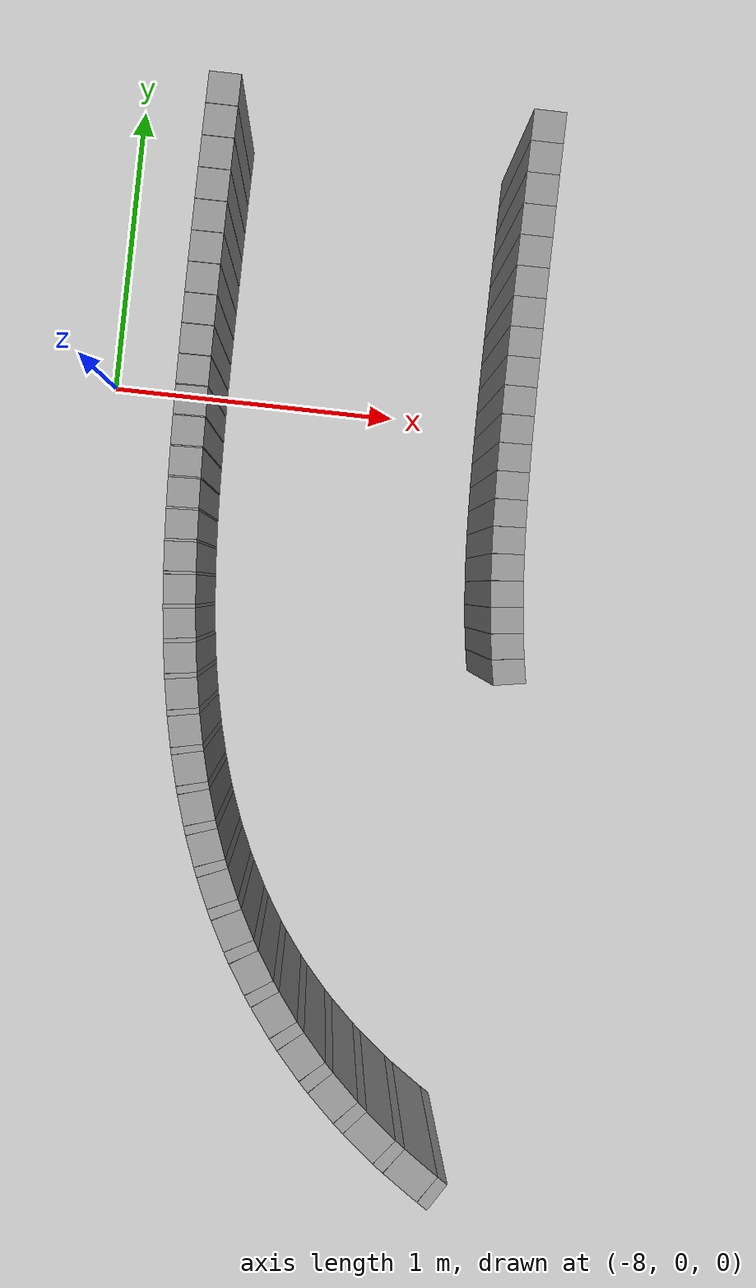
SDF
<sdf version="1.6">
 <world name="default">
  <include><uri>model://ground_plane</uri></include>
  <include><uri>model://sun</uri></include>
  <model name="wall_66_outward">
   <static>true</static>
   <link name="link">
    <collision name="collision">
     <geometry><box><size>0.09631572807930842 0.1 1.0</size></box></geometry>
    </collision>
    <visual name="visual">
     <geometry><box><size>0.09631572807930842 0.1 1.0</size></box></geometry>
     <material>
      <script><uri>file://media/materials/scripts/gazebo.material</uri><name>Gazebo/Gray</name></script>
     </material>
    </visual>
   </link>
   <pose>-6.646806929179499 0.8423376542330165 0.5 0 0 -1.5793397009311867</pose>
  </model>
  <model name="wall_67_outward">
   <static>true</static>
   <link name="link">
    <collision name="collision">
     <geometry><box><size>0.09636997948394029 0.1 1.0</size></box></geometry>
    </collision>
    <visual name="visual">
     <geometry><box><size>0.09636997948394029 0.1 1.0</size></box></geometry>
     <material>
      <script><uri>file://media/materials/scripts/gazebo.material</uri><name>Gazebo/Gray</name></script>
     </material>
    </visual>
   </link>
   <pose>-6.6475295909052825 0.7459975631209121 0.5 0 0 -1.5772555633033383</pose>
  </model>
  <model name="wall_68_outward">
   <static>true</static>
   <link name="link">
    <collision name="collision">
     <geometry><box><size>0.09609616892084166 0.1 1.0</size></box></geometry>
    </collision>
    <visual name="visual">
     <geometry><box><size>0.09609616892084166 0.1 1.0</size></box></geometry>
     <material>
      <script><uri>file://media/materials/scripts/gazebo.material</uri><name>Gazebo/Gray</name></script>
     </material>
    </visual>
   </link>
   <pose>-6.648060812452079 0.6497659976939563 0.5 0 0 -1.5753747868347545</pose>
  </model>
  <model name="wall_69_outward">
   <static>true</static>
   <link name="link">
    <collision name="collision">
     <geometry><box><size>0.09551934050685137 0.1 1.0</size></box></geometry>
    </collision>
    <visual name="visual">
     <geometry><box><size>0.09551934050685137 0.1 1.0</size></box></geometry>
     <material>
      <script><uri>file://media/materials/scripts/gazebo.material</uri><name>Gazebo/Gray</name></script>
     </material>
    </visual>
   </link>
   <pose>-6.64841480212271 0.5539589345733616 0.5 0 0 -1.5736021330247256</pose>
  </model>
  <model name="wall_70_outward">
   <static>true</static>
   <link name="link">
    <collision name="collision">
     <geometry><box><size>0.09467899923356797 0.1 1.0</size></box></geometry>
    </collision>
    <visual name="visual">
     <geometry><box><size>0.09467899923356797 0.1 1.0</size></box></geometry>
     <material>
      <script><uri>file://media/materials/scripts/gazebo.material</uri><name>Gazebo/Gray</name></script>
     </material>
    </visual>
   </link>
   <pose>-6.648597572060714 0.45885997781566623 0.5 0 0 -1.5718264547539569</pose>
  </model>
  <model name="wall_71_outward">
   <static>true</static>
   <link name="link">
    <collision name="collision">
     <geometry><box><size>0.09362774729241372 0.1 1.0</size></box></geometry>
    </collision>
    <visual name="visual">
     <geometry><box><size>0.09362774729241372 0.1 1.0</size></box></geometry>
     <material>
      <script><uri>file://media/materials/scripts/gazebo.material</uri><name>Gazebo/Gray</name></script>
     </material>
    </visual>
   </link>
   <pose>-6.648605551240209 0.36470664743778175 0.5 0 0 -1.569925077398375</pose>
  </model>
  <model name="wall_72_outward">
   <static>true</static>
   <link name="link">
    <collision name="collision">
     <geometry><box><size>0.09242669823755846 0.1 1.0</size></box></geometry>
    </collision>
    <visual name="visual">
     <geometry><box><size>0.09242669823755846 0.1 1.0</size></box></geometry>
     <material>
      <script><uri>file://media/materials/scripts/gazebo.material</uri><name>Gazebo/Gray</name></script>
     </material>
    </visual>
   </link>
   <pose>-6.648423612673602 0.2716796580051666 0.5 0 0 -1.5677419662093321</pose>
  </model>
  <model name="wall_73_outward">
   <static>true</static>
   <link name="link">
    <collision name="collision">
     <geometry><box><size>0.09113584901181712 0.1 1.0</size></box></geometry>
    </collision>
    <visual name="visual">
     <geometry><box><size>0.09113584901181712 0.1 1.0</size></box></geometry>
     <material>
      <script><uri>file://media/materials/scripts/gazebo.material</uri><name>Gazebo/Gray</name></script>
     </material>
    </visual>
   </link>
   <pose>-6.648023358422238 0.17989933658742335 0.5 0 0 -1.5651102298796487</pose>
  </model>
  <model name="wall_74_outward">
   <static>true</static>
   <link name="link">
    <collision name="collision">
     <geometry><box><size>0.08981278426145214 0.1 1.0</size></box></geometry>
    </collision>
    <visual name="visual">
     <geometry><box><size>0.08981278426145214 0.1 1.0</size></box></geometry>
     <material>
      <script><uri>file://media/materials/scripts/gazebo.material</uri><name>Gazebo/Gray</name></script>
     </material>
    </visual>
   </link>
   <pose>-6.647361095609651 0.08942756637681172 0.5 0 0 -1.5618184069321794</pose>
  </model>
  <model name="wall_75_outward">
   <static>true</static>
   <link name="link">
    <collision name="collision">
     <geometry><box><size>0.08850952684762141 0.1 1.0</size></box></geometry>
    </collision>
    <visual name="visual">
     <geometry><box><size>0.08850952684762141 0.1 1.0</size></box></geometry>
     <material>
      <script><uri>file://media/materials/scripts/gazebo.material</uri><name>Gazebo/Gray</name></script>
     </material>
    </visual>
   </link>
   <pose>-6.646375726987853 0.0002720504862332683 0.5 0 0 -1.557640119449319</pose>
  </model>
  <model name="wall_76_outward">
   <static>true</static>
   <link name="link">
    <collision name="collision">
     <geometry><box><size>0.08726296151428786 0.1 1.0</size></box></geometry>
    </collision>
    <visual name="visual">
     <geometry><box><size>0.08726296151428786 0.1 1.0</size></box></geometry>
     <material>
      <script><uri>file://media/materials/scripts/gazebo.material</uri><name>Gazebo/Gray</name></script>
     </material>
    </visual>
   </link>
   <pose>-6.644986794409071 -0.08760290520799549 0.5 0 0 -1.552305767029209</pose>
  </model>
  <model name="wall_77_outward">
   <static>true</static>
   <link name="link">
    <collision name="collision">
     <geometry><box><size>0.08610045240167953 0.1 1.0</size></box></geometry>
    </collision>
    <visual name="visual">
     <geometry><box><size>0.08610045240167953 0.1 1.0</size></box></geometry>
     <material>
      <script><uri>file://media/materials/scripts/gazebo.material</uri><name>Gazebo/Gray</name></script>
     </material>
    </visual>
   </link>
   <pose>-6.6430923979326995 -0.17426341124934486 0.5 0 0 -1.5455284527245339</pose>
  </model>
  <model name="wall_78_outward">
   <static>true</static>
   <link name="link">
    <collision name="collision">
     <geometry><box><size>0.08503401619928413 0.1 1.0</size></box></geometry>
    </collision>
    <visual name="visual">
     <geometry><box><size>0.08503401619928413 0.1 1.0</size></box></geometry>
     <material>
      <script><uri>file://media/materials/scripts/gazebo.material</uri><name>Gazebo/Gray</name></script>
     </material>
    </visual>
   </link>
   <pose>-6.6405685250781765 -0.2597926392818611 0.5 0 0 -1.537010455135015</pose>
  </model>
  <model name="wall_79_outward">
   <static>true</static>
   <link name="link">
    <collision name="collision">
     <geometry><box><size>0.08403524210491692 0.1 1.0</size></box></geometry>
    </collision>
    <visual name="visual">
     <geometry><box><size>0.08403524210491692 0.1 1.0</size></box></geometry>
     <material>
      <script><uri>file://media/materials/scripts/gazebo.material</uri><name>Gazebo/Gray</name></script>
     </material>
    </visual>
   </link>
   <pose>-6.637269340854101 -0.34426168354729436 0.5 0 0 -1.5264436431702448</pose>
  </model>
  <model name="wall_80_outward">
   <static>true</static>
   <link name="link">
    <collision name="collision">
     <geometry><box><size>0.08307576225322622 0.1 1.0</size></box></geometry>
    </collision>
    <visual name="visual">
     <geometry><box><size>0.08307576225322622 0.1 1.0</size></box></geometry>
     <material>
      <script><uri>file://media/materials/scripts/gazebo.material</uri><name>Gazebo/Gray</name></script>
     </material>
    </visual>
   </link>
   <pose>-6.633024968198006 -0.42770754543979006 0.5 0 0 -1.5134343301970588</pose>
  </model>
  <model name="wall_81_outward">
   <static>true</static>
   <link name="link">
    <collision name="collision">
     <geometry><box><size>0.08211374612448818 0.1 1.0</size></box></geometry>
    </collision>
    <visual name="visual">
     <geometry><box><size>0.08211374612448818 0.1 1.0</size></box></geometry>
     <material>
      <script><uri>file://media/materials/scripts/gazebo.material</uri><name>Gazebo/Gray</name></script>
     </material>
    </visual>
   </link>
   <pose>-6.62764266120326 -0.5101241622783206 0.5 0 0 -1.4976393644849058</pose>
  </model>
  <model name="wall_82_outward">
   <static>true</static>
   <link name="link">
    <collision name="collision">
     <geometry><box><size>0.08107876198842183 0.1 1.0</size></box></geometry>
    </collision>
    <visual name="visual">
     <geometry><box><size>0.08107876198842183 0.1 1.0</size></box></geometry>
     <material>
      <script><uri>file://media/materials/scripts/gazebo.material</uri><name>Gazebo/Gray</name></script>
     </material>
    </visual>
   </link>
   <pose>-6.62091075624418 -0.5914385450416495 0.5 0 0 -1.47863225270721</pose>
  </model>
  <model name="wall_83_outward">
   <static>true</static>
   <link name="link">
    <collision name="collision">
     <geometry><box><size>0.07991718326872983 0.1 1.0</size></box></geometry>
    </collision>
    <visual name="visual">
     <geometry><box><size>0.07991718326872983 0.1 1.0</size></box></geometry>
     <material>
      <script><uri>file://media/materials/scripts/gazebo.material</uri><name>Gazebo/Gray</name></script>
     </material>
    </visual>
   </link>
   <pose>-6.612600901495648 -0.6715012505308858 0.5 0 0 -1.45595374251454</pose>
  </model>
  <model name="wall_84_outward">
   <static>true</static>
   <link name="link">
    <collision name="collision">
     <geometry><box><size>0.07856723562071932 0.1 1.0</size></box></geometry>
    </collision>
    <visual name="visual">
     <geometry><box><size>0.07856723562071932 0.1 1.0</size></box></geometry>
     <material>
      <script><uri>file://media/materials/scripts/gazebo.material</uri><name>Gazebo/Gray</name></script>
     </material>
    </visual>
   </link>
   <pose>-6.602475267364241 -0.750086678565346 0.5 0 0 -1.4291249330398235</pose>
  </model>
  <model name="wall_85_outward">
   <static>true</static>
   <link name="link">
    <collision name="collision">
     <geometry><box><size>0.07698762433729496 0.1 1.0</size></box></geometry>
    </collision>
    <visual name="visual">
     <geometry><box><size>0.07698762433729496 0.1 1.0</size></box></geometry>
     <material>
      <script><uri>file://media/materials/scripts/gazebo.material</uri><name>Gazebo/Gray</name></script>
     </material>
    </visual>
   </link>
   <pose>-6.590294246321818 -0.8268945378711168 0.5 0 0 -1.3975855189452417</pose>
  </model>
  <model name="wall_125_inward">
   <static>true</static>
   <link name="link">
    <collision name="collision">
     <geometry><box><size>0.09742737777414394 0.1 1.0</size></box></geometry>
    </collision>
    <visual name="visual">
     <geometry><box><size>0.09742737777414394 0.1 1.0</size></box></geometry>
     <material>
      <script><uri>file://media/materials/scripts/gazebo.material</uri><name>Gazebo/Gray</name></script>
     </material>
    </visual>
   </link>
   <pose>-7.6467701375581365 0.850915713422933 0.5 0 0 -1.5793397009311803</pose>
  </model>
  <model name="wall_126_inward">
   <static>true</static>
   <link name="link">
    <collision name="collision">
     <geometry><box><size>0.0010420686253213988 0.1 1.0</size></box></geometry>
    </collision>
    <visual name="visual">
     <geometry><box><size>0.0010420686253213988 0.1 1.0</size></box></geometry>
     <material>
      <script><uri>file://media/materials/scripts/gazebo.material</uri><name>Gazebo/Gray</name></script>
     </material>
    </visual>
   </link>
   <pose>-7.647190220165916 0.8016827826591142 0.5 0 0 -1.578297632117041</pose>
  </model>
  <model name="wall_127_inward">
   <static>true</static>
   <link name="link">
    <collision name="collision">
     <geometry><box><size>0.09736120833529102 0.1 1.0</size></box></geometry>
    </collision>
    <visual name="visual">
     <geometry><box><size>0.09736120833529102 0.1 1.0</size></box></geometry>
     <material>
      <script><uri>file://media/materials/scripts/gazebo.material</uri><name>Gazebo/Gray</name></script>
     </material>
    </visual>
   </link>
   <pose>-7.647508565915928 0.7524821743540642 0.5 0 0 -1.577255563303341</pose>
  </model>
  <model name="wall_128_inward">
   <static>true</static>
   <link name="link">
    <collision name="collision">
     <geometry><box><size>0.0009403880956931294 0.1 1.0</size></box></geometry>
    </collision>
    <visual name="visual">
     <geometry><box><size>0.0009403880956931294 0.1 1.0</size></box></geometry>
     <material>
      <script><uri>file://media/materials/scripts/gazebo.material</uri><name>Gazebo/Gray</name></script>
     </material>
    </visual>
   </link>
   <pose>-7.6478255981815675 0.7033323988151989 0.5 0 0 -1.5763151750689106</pose>
  </model>
  <model name="wall_129_inward">
   <static>true</static>
   <link name="link">
    <collision name="collision">
     <geometry><box><size>0.09700952674514839 0.1 1.0</size></box></geometry>
    </collision>
    <visual name="visual">
     <geometry><box><size>0.09700952674514839 0.1 1.0</size></box></geometry>
     <material>
      <script><uri>file://media/materials/scripts/gazebo.material</uri><name>Gazebo/Gray</name></script>
     </material>
    </visual>
   </link>
   <pose>-7.648050269442975 0.6543579569399951 0.5 0 0 -1.57537478683475</pose>
  </model>
  <model name="wall_130_inward">
   <static>true</static>
   <link name="link">
    <collision name="collision">
     <geometry><box><size>0.0008863267889623332 0.1 1.0</size></box></geometry>
    </collision>
    <visual name="visual">
     <geometry><box><size>0.0008863267889623332 0.1 1.0</size></box></geometry>
     <material>
      <script><uri>file://media/materials/scripts/gazebo.material</uri><name>Gazebo/Gray</name></script>
     </material>
    </visual>
   </link>
   <pose>-7.648273982002481 0.6054105415782278 0.5 0 0 -1.5744884599296194</pose>
  </model>
  <model name="wall_131_inward">
   <static>true</static>
   <link name="link">
    <collision name="collision">
     <geometry><box><size>0.09640642375962412 0.1 1.0</size></box></geometry>
    </collision>
    <visual name="visual">
     <geometry><box><size>0.09640642375962412 0.1 1.0</size></box></geometry>
     <material>
      <script><uri>file://media/materials/scripts/gazebo.material</uri><name>Gazebo/Gray</name></script>
     </material>
    </visual>
   </link>
   <pose>-7.648410866911748 0.5567643590654385 0.5 0 0 -1.5736021330247332</pose>
  </model>
  <model name="wall_132_inward">
   <static>true</static>
   <link name="link">
    <collision name="collision">
     <geometry><box><size>0.0008878390187475332 0.1 1.0</size></box></geometry>
    </collision>
    <visual name="visual">
     <geometry><box><size>0.0008878390187475332 0.1 1.0</size></box></geometry>
     <material>
      <script><uri>file://media/materials/scripts/gazebo.material</uri><name>Gazebo/Gray</name></script>
     </material>
    </visual>
   </link>
   <pose>-7.6485469670289685 0.5081174182336927 0.5 0 0 -1.5727142938889964</pose>
  </model>
  <model name="wall_133_inward">
   <static>true</static>
   <link name="link">
    <collision name="collision">
     <geometry><box><size>0.0955982634004976 0.1 1.0</size></box></geometry>
    </collision>
    <visual name="visual">
     <geometry><box><size>0.0955982634004976 0.1 1.0</size></box></geometry>
     <material>
      <script><uri>file://media/materials/scripts/gazebo.material</uri><name>Gazebo/Gray</name></script>
     </material>
    </visual>
   </link>
   <pose>-7.648597057664733 0.45987439320191803 0.5 0 0 -1.571826454753956</pose>
  </model>
  <model name="wall_134_inward">
   <static>true</static>
   <link name="link">
    <collision name="collision">
     <geometry><box><size>0.0009506885345854045 0.1 1.0</size></box></geometry>
    </collision>
    <visual name="visual">
     <geometry><box><size>0.0009506885345854045 0.1 1.0</size></box></geometry>
     <material>
      <script><uri>file://media/materials/scripts/gazebo.material</uri><name>Gazebo/Gray</name></script>
     </material>
    </visual>
   </link>
   <pose>-7.6486463346390146 0.41159994259722377 0.5 0 0 -1.570875766076798</pose>
  </model>
  <model name="wall_135_inward">
   <static>true</static>
   <link name="link">
    <collision name="collision">
     <geometry><box><size>0.09464886978830478 0.1 1.0</size></box></geometry>
    </collision>
    <visual name="visual">
     <geometry><box><size>0.09464886978830478 0.1 1.0</size></box></geometry>
     <material>
      <script><uri>file://media/materials/scripts/gazebo.material</uri><name>Gazebo/Gray</name></script>
     </material>
    </visual>
   </link>
   <pose>-7.648605141019896 0.3638001813986872 0.5 0 0 -1.5699250773983717</pose>
  </model>
  <model name="wall_136_inward">
   <static>true</static>
   <link name="link">
    <collision name="collision">
     <geometry><box><size>0.0010915553777553508 0.1 1.0</size></box></geometry>
    </collision>
    <visual name="visual">
     <geometry><box><size>0.0010915553777553508 0.1 1.0</size></box></geometry>
     <material>
      <script><uri>file://media/materials/scripts/gazebo.material</uri><name>Gazebo/Gray</name></script>
     </material>
    </visual>
   </link>
   <pose>-7.648562838385287 0.31592998782839793 0.5 0 0 -1.5688335218040168</pose>
  </model>
  <model name="wall_137_inward">
   <static>true</static>
   <link name="link">
    <collision name="collision">
     <geometry><box><size>0.09363041071362793 0.1 1.0</size></box></geometry>
    </collision>
    <visual name="visual">
     <geometry><box><size>0.09363041071362793 0.1 1.0</size></box></geometry>
     <material>
      <script><uri>file://media/materials/scripts/gazebo.material</uri><name>Gazebo/Gray</name></script>
     </material>
    </visual>
   </link>
   <pose>-7.648418776835085 0.2685692242061699 0.5 0 0 -1.5677419662093337</pose>
  </model>
  <model name="wall_138_inward">
   <static>true</static>
   <link name="link">
    <collision name="collision">
     <geometry><box><size>0.0013158677851040886 0.1 1.0</size></box></geometry>
    </collision>
    <visual name="visual">
     <geometry><box><size>0.0013158677851040886 0.1 1.0</size></box></geometry>
     <material>
      <script><uri>file://media/materials/scripts/gazebo.material</uri><name>Gazebo/Gray</name></script>
     </material>
    </visual>
   </link>
   <pose>-7.648272911226906 0.2210963096118319 0.5 0 0 -1.5664260980444236</pose>
  </model>
  <model name="wall_139_inward">
   <static>true</static>
   <link name="link">
    <collision name="collision">
     <geometry><box><size>0.09261673995394798 0.1 1.0</size></box></geometry>
    </collision>
    <visual name="visual">
     <geometry><box><size>0.09261673995394798 0.1 1.0</size></box></geometry>
     <material>
      <script><uri>file://media/materials/scripts/gazebo.material</uri><name>Gazebo/Gray</name></script>
     </material>
    </visual>
   </link>
   <pose>-7.648006723453665 0.17413076063730498 0.5 0 0 -1.5651102298796464</pose>
  </model>
  <model name="wall_140_inward">
   <static>true</static>
   <link name="link">
    <collision name="collision">
     <geometry><box><size>0.001645910730596254 0.1 1.0</size></box></geometry>
    </collision>
    <visual name="visual">
     <geometry><box><size>0.001645910730596254 0.1 1.0</size></box></geometry>
     <material>
      <script><uri>file://media/materials/scripts/gazebo.material</uri><name>Gazebo/Gray</name></script>
     </material>
    </visual>
   </link>
   <pose>-7.647737377131303 0.1270002060273963 0.5 0 0 -1.563464318405781</pose>
  </model>
  <model name="wall_141_inward">
   <static>true</static>
   <link name="link">
    <collision name="collision">
     <geometry><box><size>0.09168031413186999 0.1 1.0</size></box></geometry>
    </collision>
    <visual name="visual">
     <geometry><box><size>0.09168031413186999 0.1 1.0</size></box></geometry>
     <material>
      <script><uri>file://media/materials/scripts/gazebo.material</uri><name>Gazebo/Gray</name></script>
     </material>
    </visual>
   </link>
   <pose>-7.647319799541756 0.08033896313213795 0.5 0 0 -1.5618184069321825</pose>
  </model>
  <model name="wall_142_inward">
   <static>true</static>
   <link name="link">
    <collision name="collision">
     <geometry><box><size>0.0020891422217466493 0.1 1.0</size></box></geometry>
    </collision>
    <visual name="visual">
     <geometry><box><size>0.0020891422217466493 0.1 1.0</size></box></geometry>
     <material>
      <script><uri>file://media/materials/scripts/gazebo.material</uri><name>Gazebo/Gray</name></script>
     </material>
    </visual>
   </link>
   <pose>-7.646896695714849 0.03345614633987147 0.5 0 0 -1.5597292631906399</pose>
  </model>
  <model name="wall_143_inward">
   <static>true</static>
   <link name="link">
    <collision name="collision">
     <geometry><box><size>0.0908876915055411 0.1 1.0</size></box></geometry>
    </collision>
    <visual name="visual">
     <geometry><box><size>0.0908876915055411 0.1 1.0</size></box></geometry>
     <material>
      <script><uri>file://media/materials/scripts/gazebo.material</uri><name>Gazebo/Gray</name></script>
     </material>
    </visual>
   </link>
   <pose>-7.646287284205551 -0.013028273769660183 0.5 0 0 -1.557640119449319</pose>
  </model>
  <model name="wall_144_inward">
   <static>true</static>
   <link name="link">
    <collision name="collision">
     <geometry><box><size>0.0026671730477494226 0.1 1.0</size></box></geometry>
    </collision>
    <visual name="visual">
     <geometry><box><size>0.0026671730477494226 0.1 1.0</size></box></geometry>
     <material>
      <script><uri>file://media/materials/scripts/gazebo.material</uri><name>Gazebo/Gray</name></script>
     </material>
    </visual>
   </link>
   <pose>-7.645668331824688 -0.05980160631316303 0.5 0 0 -1.5549729432395012</pose>
  </model>
  <model name="wall_145_inward">
   <static>true</static>
   <link name="link">
    <collision name="collision">
     <geometry><box><size>0.09029088784300002 0.1 1.0</size></box></geometry>
    </collision>
    <visual name="visual">
     <geometry><box><size>0.09029088784300002 0.1 1.0</size></box></geometry>
     <material>
      <script><uri>file://media/materials/scripts/gazebo.material</uri><name>Gazebo/Gray</name></script>
     </material>
    </visual>
   </link>
   <pose>-7.644812513892169 -0.10627275239885906 0.5 0 0 -1.5523057670292106</pose>
  </model>
  <model name="wall_146_inward">
   <static>true</static>
   <link name="link">
    <collision name="collision">
     <geometry><box><size>0.003388650667022037 0.1 1.0</size></box></geometry>
    </collision>
    <visual name="visual">
     <geometry><box><size>0.003388650667022037 0.1 1.0</size></box></geometry>
     <material>
      <script><uri>file://media/materials/scripts/gazebo.material</uri><name>Gazebo/Gray</name></script>
     </material>
    </visual>
   </link>
   <pose>-7.64394072937619 -0.15310439872134568 0.5 0 0 -1.5489171098767973</pose>
  </model>
  <model name="wall_147_inward">
   <static>true</static>
   <link name="link">
    <collision name="collision">
     <geometry><box><size>0.08992429973634936 0.1 1.0</size></box></geometry>
    </collision>
    <visual name="visual">
     <geometry><box><size>0.08992429973634936 0.1 1.0</size></box></geometry>
     <material>
      <script><uri>file://media/materials/scripts/gazebo.material</uri><name>Gazebo/Gray</name></script>
     </material>
    </visual>
   </link>
   <pose>-7.642767684770782 -0.19974611577613996 0.5 0 0 -1.545528452724527</pose>
  </model>
  <model name="wall_148_inward">
   <static>true</static>
   <link name="link">
    <collision name="collision">
     <geometry><box><size>0.004258985919052926 0.1 1.0</size></box></geometry>
    </collision>
    <visual name="visual">
     <geometry><box><size>0.004258985919052926 0.1 1.0</size></box></geometry>
     <material>
      <script><uri>file://media/materials/scripts/gazebo.material</uri><name>Gazebo/Gray</name></script>
     </material>
    </visual>
   </link>
   <pose>-7.641568839587501 -0.24682247776054683 0.5 0 0 -1.541269453929624</pose>
  </model>
  <model name="wall_149_inward">
   <static>true</static>
   <link name="link">
    <collision name="collision">
     <geometry><box><size>0.08980525604455952 0.1 1.0</size></box></geometry>
    </collision>
    <visual name="visual">
     <geometry><box><size>0.08980525604455952 0.1 1.0</size></box></geometry>
     <material>
      <script><uri>file://media/materials/scripts/gazebo.material</uri><name>Gazebo/Gray</name></script>
     </material>
    </visual>
   </link>
   <pose>-7.639989185631291 -0.2938280451220163 0.5 0 0 -1.5370104551350177</pose>
  </model>
  <model name="wall_150_inward">
   <static>true</static>
   <link name="link">
    <collision name="collision">
     <geometry><box><size>0.005283381401922221 0.1 1.0</size></box></geometry>
    </collision>
    <visual name="visual">
     <geometry><box><size>0.005283381401922221 0.1 1.0</size></box></geometry>
     <material>
      <script><uri>file://media/materials/scripts/gazebo.material</uri><name>Gazebo/Gray</name></script>
     </material>
    </visual>
   </link>
   <pose>-7.638369217113972 -0.34134472254895837 0.5 0 0 -1.53172704915273</pose>
  </model>
  <model name="wall_151_inward">
   <static>true</static>
   <link name="link">
    <collision name="collision">
     <geometry><box><size>0.08992934379016378 0.1 1.0</size></box></geometry>
    </collision>
    <visual name="visual">
     <geometry><box><size>0.08992934379016378 0.1 1.0</size></box></geometry>
     <material>
      <script><uri>file://media/materials/scripts/gazebo.material</uri><name>Gazebo/Gray</name></script>
     </material>
    </visual>
   </link>
   <pose>-7.636272384342519 -0.38890485013725823 0.5 0 0 -1.5264436431702433</pose>
  </model>
  <model name="wall_152_inward">
   <static>true</static>
   <link name="link">
    <collision name="collision">
     <geometry><box><size>0.006504610617417317 0.1 1.0</size></box></geometry>
    </collision>
    <visual name="visual">
     <geometry><box><size>0.006504610617417317 0.1 1.0</size></box></geometry>
     <material>
      <script><uri>file://media/materials/scripts/gazebo.material</uri><name>Gazebo/Gray</name></script>
     </material>
    </visual>
   </link>
   <pose>-7.634113401959437 -0.4370734031393523 0.5 0 0 -1.5199389866836204</pose>
  </model>
  <model name="wall_153_inward">
   <static>true</static>
   <link name="link">
    <collision name="collision">
     <geometry><box><size>0.09027695989131487 0.1 1.0</size></box></geometry>
    </collision>
    <visual name="visual">
     <geometry><box><size>0.09027695989131487 0.1 1.0</size></box></geometry>
     <material>
      <script><uri>file://media/materials/scripts/gazebo.material</uri><name>Gazebo/Gray</name></script>
     </material>
    </visual>
   </link>
   <pose>-7.631360256023182 -0.4853857418702179 0.5 0 0 -1.5134343301970588</pose>
  </model>
  <model name="wall_154_inward">
   <static>true</static>
   <link name="link">
    <collision name="collision">
     <geometry><box><size>0.00789740076168775 0.1 1.0</size></box></geometry>
    </collision>
    <visual name="visual">
     <geometry><box><size>0.00789740076168775 0.1 1.0</size></box></geometry>
     <material>
      <script><uri>file://media/materials/scripts/gazebo.material</uri><name>Gazebo/Gray</name></script>
     </material>
    </visual>
   </link>
   <pose>-7.62851493512962 -0.5343902753820278 0.5 0 0 -1.5055368473409787</pose>
  </model>
  <model name="wall_155_inward">
   <static>true</static>
   <link name="link">
    <collision name="collision">
     <geometry><box><size>0.09081449065517641 0.1 1.0</size></box></geometry>
    </collision>
    <visual name="visual">
     <geometry><box><size>0.09081449065517641 0.1 1.0</size></box></geometry>
     <material>
      <script><uri>file://media/materials/scripts/gazebo.material</uri><name>Gazebo/Gray</name></script>
     </material>
    </visual>
   </link>
   <pose>-7.624938534002988 -0.5836163614427187 0.5 0 0 -1.4976393644849066</pose>
  </model>
  <model name="wall_156_inward">
   <static>true</static>
   <link name="link">
    <collision name="collision">
     <geometry><box><size>0.009503412833141666 0.1 1.0</size></box></geometry>
    </collision>
    <visual name="visual">
     <geometry><box><size>0.009503412833141666 0.1 1.0</size></box></geometry>
     <material>
      <script><uri>file://media/materials/scripts/gazebo.material</uri><name>Gazebo/Gray</name></script>
     </material>
    </visual>
   </link>
   <pose>-7.62122730876436 -0.6336376345208434 0.5 0 0 -1.4881358085960792</pose>
  </model>
  <model name="wall_157_inward">
   <static>true</static>
   <link name="link">
    <collision name="collision">
     <geometry><box><size>0.09150055355279368 0.1 1.0</size></box></geometry>
    </collision>
    <visual name="visual">
     <geometry><box><size>0.09150055355279368 0.1 1.0</size></box></geometry>
     <material>
      <script><uri>file://media/materials/scripts/gazebo.material</uri><name>Gazebo/Gray</name></script>
     </material>
    </visual>
   </link>
   <pose>-7.6166244123132385 -0.6839292244392696 0.5 0 0 -1.4786322527072095</pose>
  </model>
  <model name="wall_158_inward">
   <static>true</static>
   <link name="link">
    <collision name="collision">
     <geometry><box><size>0.011339012100104082 0.1 1.0</size></box></geometry>
    </collision>
    <visual name="visual">
     <geometry><box><size>0.011339012100104082 0.1 1.0</size></box></geometry>
     <material>
      <script><uri>file://media/materials/scripts/gazebo.material</uri><name>Gazebo/Gray</name></script>
     </material>
    </visual>
   </link>
   <pose>-7.611828081672116 -0.7351244969526924 0.5 0 0 -1.467292997610837</pose>
  </model>
  <model name="wall_159_inward">
   <static>true</static>
   <link name="link">
    <collision name="collision">
     <geometry><box><size>0.09229465853683093 0.1 1.0</size></box></geometry>
    </collision>
    <visual name="visual">
     <geometry><box><size>0.09229465853683093 0.1 1.0</size></box></geometry>
     <material>
      <script><uri>file://media/materials/scripts/gazebo.material</uri><name>Gazebo/Gray</name></script>
     </material>
    </visual>
   </link>
   <pose>-7.605954279294736 -0.7866070107611376 0.5 0 0 -1.455953742514543</pose>
  </model>
  <model name="wall_160_inward">
   <static>true</static>
   <link name="link">
    <collision name="collision">
     <geometry><box><size>0.013414002428999086 0.1 1.0</size></box></geometry>
    </collision>
    <visual name="visual">
     <geometry><box><size>0.013414002428999086 0.1 1.0</size></box></geometry>
     <material>
      <script><uri>file://media/materials/scripts/gazebo.material</uri><name>Gazebo/Gray</name></script>
     </material>
    </visual>
   </link>
   <pose>-7.599808379176245 -0.8391022721488655 0.5 0 0 -1.4425393377771887</pose>
  </model>
  <model name="wall_161_inward">
   <static>true</static>
   <link name="link">
    <collision name="collision">
     <geometry><box><size>0.09316034753043745 0.1 1.0</size></box></geometry>
    </collision>
    <visual name="visual">
     <geometry><box><size>0.09316034753043745 0.1 1.0</size></box></geometry>
     <material>
      <script><uri>file://media/materials/scripts/gazebo.material</uri><name>Gazebo/Gray</name></script>
     </material>
    </visual>
   </link>
   <pose>-7.592373490368709 -0.8918676891279982 0.5 0 0 -1.4291249330398215</pose>
  </model>
  <model name="wall_162_inward">
   <static>true</static>
   <link name="link">
    <collision name="collision">
     <geometry><box><size>0.01576905344400309 0.1 1.0</size></box></geometry>
    </collision>
    <visual name="visual">
     <geometry><box><size>0.01576905344400309 0.1 1.0</size></box></geometry>
     <material>
      <script><uri>file://media/materials/scripts/gazebo.material</uri><name>Gazebo/Gray</name></script>
     </material>
    </visual>
   </link>
   <pose>-7.584560238310163 -0.9457682026794583 0.5 0 0 -1.4133552259925741</pose>
  </model>
  <model name="wall_163_inward">
   <static>true</static>
   <link name="link">
    <collision name="collision">
     <geometry><box><size>0.0940783169468342 0.1 1.0</size></box></geometry>
    </collision>
    <visual name="visual">
     <geometry><box><size>0.0940783169468342 0.1 1.0</size></box></geometry>
     <material>
      <script><uri>file://media/materials/scripts/gazebo.material</uri><name>Gazebo/Gray</name></script>
     </material>
    </visual>
   </link>
   <pose>-7.575217001189606 -0.9998904983190224 0.5 0 0 -1.3975855189452455</pose>
  </model>
  <model name="wall_164_inward">
   <static>true</static>
   <link name="link">
    <collision name="collision">
     <geometry><box><size>0.01840725159021153 0.1 1.0</size></box></geometry>
    </collision>
    <visual name="visual">
     <geometry><box><size>0.01840725159021153 0.1 1.0</size></box></geometry>
     <material>
      <script><uri>file://media/materials/scripts/gazebo.material</uri><name>Gazebo/Gray</name></script>
     </material>
    </visual>
   </link>
   <pose>-7.565357172895643 -1.0552609585595847 0.5 0 0 -1.3791772277177792</pose>
  </model>
  <model name="wall_165_inward">
   <static>true</static>
   <link name="link">
    <collision name="collision">
     <geometry><box><size>0.09504789954295231 0.1 1.0</size></box></geometry>
    </collision>
    <visual name="visual">
     <geometry><box><size>0.09504789954295231 0.1 1.0</size></box></geometry>
     <material>
      <script><uri>file://media/materials/scripts/gazebo.material</uri><name>Gazebo/Gray</name></script>
     </material>
    </visual>
   </link>
   <pose>-7.553696244261909 -1.1107757526248156 0.5 0 0 -1.3607689364903761</pose>
  </model>
  <model name="wall_166_inward">
   <static>true</static>
   <link name="link">
    <collision name="collision">
     <geometry><box><size>0.0213099038002963 0.1 1.0</size></box></geometry>
    </collision>
    <visual name="visual">
     <geometry><box><size>0.0213099038002963 0.1 1.0</size></box></geometry>
     <material>
      <script><uri>file://media/materials/scripts/gazebo.material</uri><name>Gazebo/Gray</name></script>
     </material>
    </visual>
   </link>
   <pose>-7.5413451556737545 -1.1676264803043164 0.5 0 0 -1.3394574195132287</pose>
  </model>
  <model name="wall_167_inward">
   <static>true</static>
   <link name="link">
    <collision name="collision">
     <geometry><box><size>0.09609364979975504 0.1 1.0</size></box></geometry>
    </collision>
    <visual name="visual">
     <geometry><box><size>0.09609364979975504 0.1 1.0</size></box></geometry>
     <material>
      <script><uri>file://media/materials/scripts/gazebo.material</uri><name>Gazebo/Gray</name></script>
     </material>
    </visual>
   </link>
   <pose>-7.526891859536951 -1.224519083754205 0.5 0 0 -1.3181459025360893</pose>
  </model>
  <model name="wall_168_inward">
   <static>true</static>
   <link name="link">
    <collision name="collision">
     <geometry><box><size>0.024462167608196774 0.1 1.0</size></box></geometry>
    </collision>
    <visual name="visual">
     <geometry><box><size>0.024462167608196774 0.1 1.0</size></box></geometry>
     <material>
      <script><uri>file://media/materials/scripts/gazebo.material</uri><name>Gazebo/Gray</name></script>
     </material>
    </visual>
   </link>
   <pose>-7.511535338080083 -1.2828050324609825 0.5 0 0 -1.2936812945867873</pose>
  </model>
  <model name="wall_169_inward">
   <static>true</static>
   <link name="link">
    <collision name="collision">
     <geometry><box><size>0.09727096320206154 0.1 1.0</size></box></geometry>
    </collision>
    <visual name="visual">
     <geometry><box><size>0.09727096320206154 0.1 1.0</size></box></geometry>
     <material>
      <script><uri>file://media/materials/scripts/gazebo.material</uri><name>Gazebo/Gray</name></script>
     </material>
    </visual>
   </link>
   <pose>-7.493742990248903 -1.3410099731790783 0.5 0 0 -1.2692166866374937</pose>
  </model>
  <model name="wall_170_inward">
   <static>true</static>
   <link name="link">
    <collision name="collision">
     <geometry><box><size>0.027780269944714827 0.1 1.0</size></box></geometry>
    </collision>
    <visual name="visual">
     <geometry><box><size>0.027780269944714827 0.1 1.0</size></box></geometry>
     <material>
      <script><uri>file://media/materials/scripts/gazebo.material</uri><name>Gazebo/Gray</name></script>
     </material>
    </visual>
   </link>
   <pose>-7.474804209162043 -1.400593979794278 0.5 0 0 -1.2414328422446408</pose>
  </model>
  <model name="wall_171_inward">
   <static>true</static>
   <link name="link">
    <collision name="collision">
     <geometry><box><size>0.0986641321778285 0.1 1.0</size></box></geometry>
    </collision>
    <visual name="visual">
     <geometry><box><size>0.0986641321778285 0.1 1.0</size></box></geometry>
     <material>
      <script><uri>file://media/materials/scripts/gazebo.material</uri><name>Gazebo/Gray</name></script>
     </material>
    </visual>
   </link>
   <pose>-7.4530649347121365 -1.4599566088664053 0.5 0 0 -1.2136489978517742</pose>
  </model>
  <model name="wall_172_inward">
   <static>true</static>
   <link name="link">
    <collision name="collision">
     <geometry><box><size>0.03113931789065774 0.1 1.0</size></box></geometry>
    </collision>
    <visual name="visual">
     <geometry><box><size>0.03113931789065774 0.1 1.0</size></box></geometry>
     <material>
      <script><uri>file://media/materials/scripts/gazebo.material</uri><name>Gazebo/Gray</name></script>
     </material>
    </visual>
   </link>
   <pose>-7.429923501862057 -1.5205863296298574 0.5 0 0 -1.182504645353765</pose>
  </model>
  <model name="wall_173_inward">
   <static>true</static>
   <link name="link">
    <collision name="collision">
     <geometry><box><size>0.10038853864620798 0.1 1.0</size></box></geometry>
    </collision>
    <visual name="visual">
     <geometry><box><size>0.10038853864620798 0.1 1.0</size></box></geometry>
     <material>
      <script><uri>file://media/materials/scripts/gazebo.material</uri><name>Gazebo/Gray</name></script>
     </material>
    </visual>
   </link>
   <pose>-7.40358732005351 -1.5808403071814932 0.5 0 0 -1.1513602928557607</pose>
  </model>
  <model name="wall_174_inward">
   <static>true</static>
   <link name="link">
    <collision name="collision">
     <geometry><box><size>0.03437177746850594 0.1 1.0</size></box></geometry>
    </collision>
    <visual name="visual">
     <geometry><box><size>0.03437177746850594 0.1 1.0</size></box></geometry>
     <material>
      <script><uri>file://media/materials/scripts/gazebo.material</uri><name>Gazebo/Gray</name></script>
     </material>
    </visual>
   </link>
   <pose>-7.3756116875532385 -1.6421300310642077 0.5 0 0 -1.1169817438743193</pose>
  </model>
  <model name="wall_175_inward">
   <static>true</static>
   <link name="link">
    <collision name="collision">
     <geometry><box><size>0.1025836661120727 0.1 1.0</size></box></geometry>
    </collision>
    <visual name="visual">
     <geometry><box><size>0.1025836661120727 0.1 1.0</size></box></geometry>
     <material>
      <script><uri>file://media/materials/scripts/gazebo.material</uri><name>Gazebo/Gray</name></script>
     </material>
    </visual>
   </link>
   <pose>-7.344019989545249 -1.7028763994733924 0.5 0 0 -1.082603194892872</pose>
  </model>
  <model name="wall_176_inward">
   <static>true</static>
   <link name="link">
    <collision name="collision">
     <geometry><box><size>0.03727278356079939 0.1 1.0</size></box></geometry>
    </collision>
    <visual name="visual">
     <geometry><box><size>0.03727278356079939 0.1 1.0</size></box></geometry>
     <material>
      <script><uri>file://media/materials/scripts/gazebo.material</uri><name>Gazebo/Gray</name></script>
     </material>
    </visual>
   </link>
   <pose>-7.310614083163861 -1.7642984932135144 0.5 0 0 -1.0453217756652444</pose>
  </model>
  <model name="wall_177_inward">
   <static>true</static>
   <link name="link">
    <collision name="collision">
     <geometry><box><size>0.10541135630454168 0.1 1.0</size></box></geometry>
    </collision>
    <visual name="visual">
     <geometry><box><size>0.10541135630454168 0.1 1.0</size></box></geometry>
     <material>
      <script><uri>file://media/materials/scripts/gazebo.material</uri><name>Gazebo/Gray</name></script>
     </material>
    </visual>
   </link>
   <pose>-7.273146138846201 -1.8249984028047934 0.5 0 0 -1.0080403564376257</pose>
  </model>
  <model name="wall_178_inward">
   <static>true</static>
   <link name="link">
    <collision name="collision">
     <geometry><box><size>0.03962623907582655 0.1 1.0</size></box></geometry>
    </collision>
    <visual name="visual">
     <geometry><box><size>0.03962623907582655 0.1 1.0</size></box></geometry>
     <material>
      <script><uri>file://media/materials/scripts/gazebo.material</uri><name>Gazebo/Gray</name></script>
     </material>
    </visual>
   </link>
   <pose>-7.233800226771698 -1.8859018906649494 0.5 0 0 -0.9684037395839461</pose>
  </model>
  <model name="wall_179_inward">
   <static>true</static>
   <link name="link">
    <collision name="collision">
     <geometry><box><size>0.1090413547663281 0.1 1.0</size></box></geometry>
    </collision>
    <visual name="visual">
     <geometry><box><size>0.1090413547663281 0.1 1.0</size></box></geometry>
     <material>
      <script><uri>file://media/materials/scripts/gazebo.material</uri><name>Gazebo/Gray</name></script>
     </material>
    </visual>
   </link>
   <pose>-7.189925633666962 -1.9458921946102654 0.5 0 0 -0.9287671227302553</pose>
  </model>
  <model name="wall_180_inward">
   <static>true</static>
   <link name="link">
    <collision name="collision">
     <geometry><box><size>0.041227062828705675 0.1 1.0</size></box></geometry>
    </collision>
    <visual name="visual">
     <geometry><box><size>0.041227062828705675 0.1 1.0</size></box></geometry>
     <material>
      <script><uri>file://media/materials/scripts/gazebo.material</uri><name>Gazebo/Gray</name></script>
     </material>
    </visual>
   </link>
   <pose>-7.144263506121343 -2.005542914883062 0.5 0 0 -0.887528372221481</pose>
  </model>
  <model name="wall_181_inward">
   <static>true</static>
   <link name="link">
    <collision name="collision">
     <geometry><box><size>0.11364385647155942 0.1 1.0</size></box></geometry>
    </collision>
    <visual name="visual">
     <geometry><box><size>0.11364385647155942 0.1 1.0</size></box></geometry>
     <material>
      <script><uri>file://media/materials/scripts/gazebo.material</uri><name>Gazebo/Gray</name></script>
     </material>
    </visual>
   </link>
   <pose>-7.093589900664046 -2.06407875389817 0.5 0 0 -0.8462896217126963</pose>
  </model>
  <model name="wall_182_inward">
   <static>true</static>
   <link name="link">
    <collision name="collision">
     <geometry><box><size>0.04190934711620887 0.1 1.0</size></box></geometry>
    </collision>
    <visual name="visual">
     <geometry><box><size>0.04190934711620887 0.1 1.0</size></box></geometry>
     <material>
      <script><uri>file://media/materials/scripts/gazebo.material</uri><name>Gazebo/Gray</name></script>
     </material>
    </visual>
   </link>
   <pose>-7.04139678809586 -2.1217241054608005 0.5 0 0 -0.804367996673208</pose>
  </model>
  <model name="wall_183_inward">
   <static>true</static>
   <link name="link">
    <collision name="collision">
     <geometry><box><size>0.11937487928929556 0.1 1.0</size></box></geometry>
    </collision>
    <visual name="visual">
     <geometry><box><size>0.11937487928929556 0.1 1.0</size></box></geometry>
     <material>
      <script><uri>file://media/materials/scripts/gazebo.material</uri><name>Gazebo/Gray</name></script>
     </material>
    </visual>
   </link>
   <pose>-6.983700443476019 -2.1780453669749953 0.5 0 0 -0.7624463716337307</pose>
  </model>
  <model name="wall_184_inward">
   <static>true</static>
   <link name="link">
    <collision name="collision">
     <geometry><box><size>0.04161553386550544 0.1 1.0</size></box></geometry>
    </collision>
    <visual name="visual">
     <geometry><box><size>0.04161553386550544 0.1 1.0</size></box></geometry>
     <material>
      <script><uri>file://media/materials/scripts/gazebo.material</uri><name>Gazebo/Gray</name></script>
     </material>
    </visual>
   </link>
   <pose>-6.924905403167024 -2.233004166899735 0.5 0 0 -0.7208188164017153</pose>
  </model>
  <model name="wall_185_inward">
   <static>true</static>
   <link name="link">
    <collision name="collision">
     <geometry><box><size>0.12635779773375905 0.1 1.0</size></box></geometry>
    </collision>
    <visual name="visual">
     <geometry><box><size>0.12635779773375905 0.1 1.0</size></box></geometry>
     <material>
      <script><uri>file://media/materials/scripts/gazebo.material</uri><name>Gazebo/Gray</name></script>
     </material>
    </visual>
   </link>
   <pose>-6.860114944030577 -2.286424001572764 0.5 0 0 -0.6791912611696961</pose>
  </model>
  <model name="wall_186_inward">
   <static>true</static>
   <link name="link">
    <collision name="collision">
     <geometry><box><size>0.04037802834203108 0.1 1.0</size></box></geometry>
    </collision>
    <visual name="visual">
     <geometry><box><size>0.04037802834203108 0.1 1.0</size></box></geometry>
     <material>
      <script><uri>file://media/materials/scripts/gazebo.material</uri><name>Gazebo/Gray</name></script>
     </material>
    </visual>
   </link>
   <pose>-6.794748691630392 -2.3381480920407838 0.5 0 0 -0.6388022528135605</pose>
  </model>
  <model name="wall_187_inward">
   <static>true</static>
   <link name="link">
    <collision name="collision">
     <geometry><box><size>0.13467497129939285 0.1 1.0</size></box></geometry>
    </collision>
    <visual name="visual">
     <geometry><box><size>0.13467497129939285 0.1 1.0</size></box></geometry>
     <material>
      <script><uri>file://media/materials/scripts/gazebo.material</uri><name>Gazebo/Gray</name></script>
     </material>
    </visual>
   </link>
   <pose>-6.7229044535170335 -2.3881188459347644 0.5 0 0 -0.598413244457426</pose>
  </model>
  <model name="wall_188_inward">
   <static>true</static>
   <link name="link">
    <collision name="collision">
     <geometry><box><size>0.03831397710831209 0.1 1.0</size></box></geometry>
    </collision>
    <visual name="visual">
     <geometry><box><size>0.03831397710831209 0.1 1.0</size></box></geometry>
     <material>
      <script><uri>file://media/materials/scripts/gazebo.material</uri><name>Gazebo/Gray</name></script>
     </material>
    </visual>
   </link>
   <pose>-6.651038225677638 -2.43622960380967 0.5 0 0 -0.560089887248445</pose>
  </model>
 </world>
</sdf>
